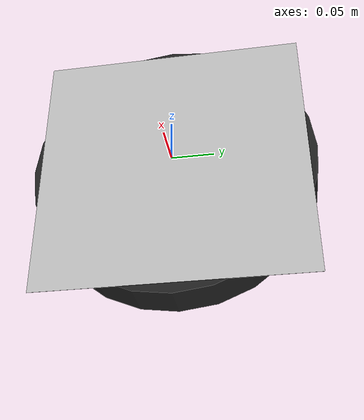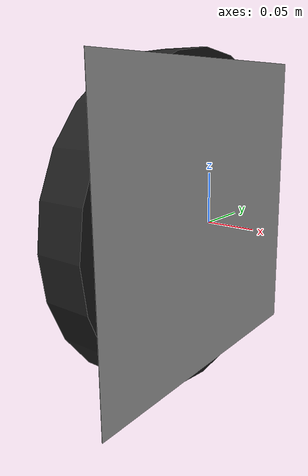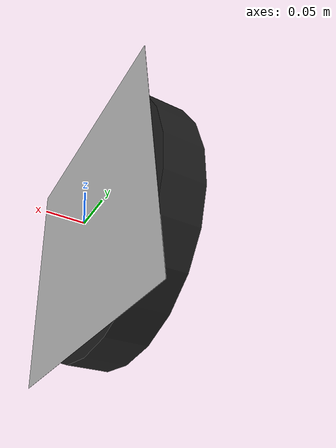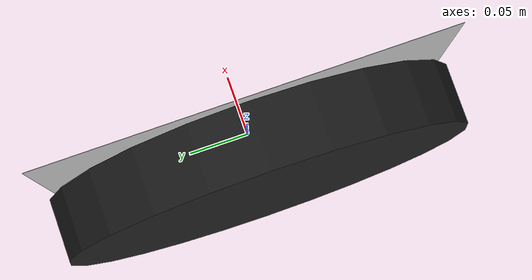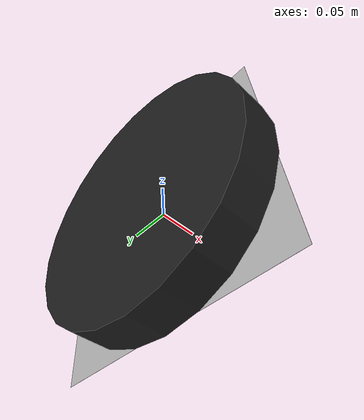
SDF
<?xml version="1.0"?>
<sdf version="1.10">
  <model name="gauge_asset">
    <static>true</static>
    <link name="gauge">
      <!-- The face centre is the include origin and its outward normal is +X. -->
      <visual name="gauge_face">
        <pose>0 0 0 0 0 0</pose>
        <geometry>
          <plane>
            <normal>1 0 0</normal>
            <size>0.32 0.32</size>
          </plane>
        </geometry>
        <material>
          <lighting>false</lighting>
          <pbr>
            <metal>
              <albedo_map>model://gauge_asset/materials/textures/gauge_face.png</albedo_map>
              <roughness>1.0</roughness>
              <metalness>0.0</metalness>
            </metal>
          </pbr>
        </material>
        <cast_shadows>false</cast_shadows>
      </visual>
      <!-- Cylinder axis is rotated onto X and the housing stays behind the face. -->
      <visual name="housing">
        <pose>-0.03 0 0 0 1.57079632679 0</pose>
        <geometry>
          <cylinder>
            <radius>0.17</radius>
            <length>0.05</length>
          </cylinder>
        </geometry>
        <material>
          <ambient>0.08 0.08 0.08 1</ambient>
          <diffuse>0.12 0.12 0.12 1</diffuse>
        </material>
      </visual>
      <collision name="housing_collision">
        <pose>-0.03 0 0 0 1.57079632679 0</pose>
        <geometry>
          <cylinder>
            <radius>0.17</radius>
            <length>0.05</length>
          </cylinder>
        </geometry>
      </collision>
    </link>
  </model>
</sdf>
